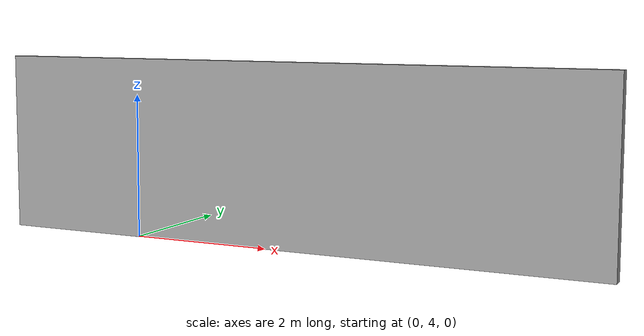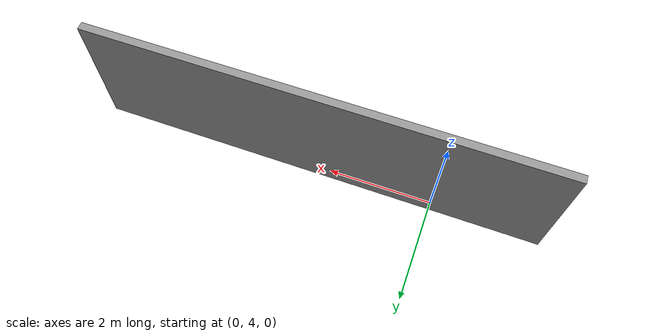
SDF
<?xml version='1.0'?>
<sdf version='1.7'>
  <model name='room'>
    <pose>2.27 2.06825 0 0 -0 0</pose>
    <link name='Wall_5'>
      <collision name='Wall_5_Collision'>
        <geometry>
          <box>
            <size>8.75 0.15 2.5</size>
          </box>
        </geometry>
        <pose>0 0 1.25 0 -0 0</pose>
      </collision>
      <visual name='Wall_5_Visual'>
        <pose>0 0 1.25 0 -0 0</pose>
        <geometry>
          <box>
            <size>8.75 0.15 2.5</size>
          </box>
        </geometry>
        <material>
          <script>
            <uri>file://media/materials/scripts/gazebo.material</uri>
            <name>Gazebo/Grey</name>
          </script>
          <ambient>1 1 1 1</ambient>
        </material>
        <meta>
          <layer>0</layer>
        </meta>
      </visual>
      <pose>0 1.99325 0 0 -0 3.14159</pose>
    </link>
    <static>1</static>
  </model>
</sdf>
